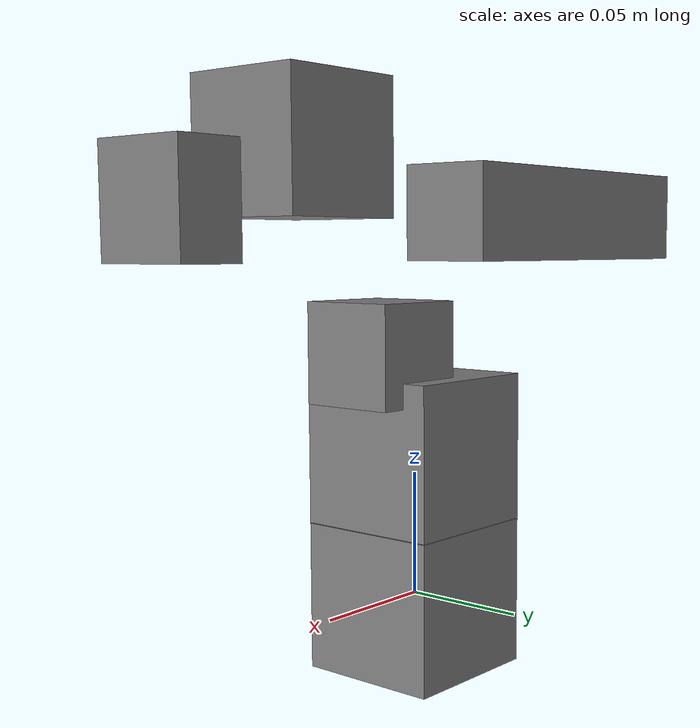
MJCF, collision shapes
<?xml version="1.0" ?>
<mujoco>
  <compiler angle="radian" autolimits="true"/>
  <visual>
    <global ellipsoidinertia="true"/>
  </visual>
  <default>
    <default class="arx5">
      <joint damping="0.1" frictionloss="0.001"/>
    </default>
  </default>
  <asset>
    <material name="groundplane" texture="groundplane" texuniform="true" texrepeat="5 5" reflectance="0.2"/>
    <texture type="2d" name="groundplane" builtin="checker" mark="edge" rgb1="0.2 0.3 0.4" rgb2="0.1 0.2 0.3" markrgb="0.8 0.8 0.8" width="300" height="300"/>
    <material name="arm" rgba="0.752941176470588 0.752941176470588 0.752941176470588 1" />

    <mesh name="base_link" file="meshes/base_link.STL"/>
    <mesh name="link1" file="meshes/link1.STL"/>
    <mesh name="link2" file="meshes/link2.STL"/>
    <mesh name="link3" file="meshes/link3.STL"/>
    <mesh name="link4" file="meshes/link4.STL"/>
    <mesh name="link5" file="meshes/link5.STL"/>
  </asset>
  <worldbody>
    <!--Start of base-->
    <body name="base" pos="0 0 0" gravcomp="1">
      <!--Start of hand base-->
      <body name="base_link" pos="0.0 0.0 0.0" quat="1 0 0 0" gravcomp="1">
        <inertial pos="-3.764e-5 0.00006519 0.03037877" quat="1.0 0.0 0.0 0.0" mass="0.428" diaginertia="0.00060728 0.00060832 1.917e-4"/>
        <site name="right_center" pos="0 0 0" size="0.01" rgba="1 0.3 0.3 1" group="2"/>
        <geom pos="0.0 0.0 0.0" quat="1.0 0.0 0.0 0.0" name="base_link_visual" group="1" contype="0" conaffinity="0" mesh="base_link" type="mesh"/>
        <geom pos="0.0 0.0 0.0" quat="1.0 0.0 0.0 0.0" name="base_link_collision" group="0" type="box" size="0.03 0.03 0.03"/>
        <!--Start of link1-->
        <body name="link1" pos="0.0 0.0 0.0603" quat="1.0 0.0 0.0 0.0" gravcomp="1">
          <joint name="joint1" type="hinge" class="arx5" axis="0 0 1" range="-3.14159 3.14159"/>
          <inertial pos="0.00571213 0.0002547 0.01750661" quat="1.0 0.0 0.0 0.0" mass="0.064" diaginertia="0.00008 0.00003 0.00007"/>
          <geom pos="0.0 0.0 0.0" quat="1.0 0.0 0.0 0.0" name="link1_visual" group="1" contype="0" material="arm" conaffinity="0" mesh="link1" type="mesh"/>
          <geom pos="0.0 0.0 0.0" quat="1.0 0.0 0.0 0.0" name="link1_collision" group="0" type="box" size="0.03 0.03 0.03"/>
          <!--Start of link2-->
          <body name="link2" pos="0.02 0.0 0.0402" quat="1.0 0.0 0.0 0.0" gravcomp="1">
            <joint name="joint2" type="hinge" class="arx5" axis="0 1 0" range="0 3.14"/>
            <inertial pos="-0.13225701 0.00072373 4.274e-5" quat="1.0 0.0 0.0 0.0" mass="1.165" diaginertia="0.00057063 0.03669927 0.03683489"/>
            <geom pos="0.0 0.0 0.0" material="arm" quat="1.0 0.0 0.0 0.0" name="link2_visual" group="1" contype="0" conaffinity="0" mesh="link2" type="mesh"/>
            <geom pos="0.0 0.0 0.0" quat="1.0 0.0 0.0 0.0" name="link2_collision" group="0" type="box" size="0.02 0.02 0.02"/>
            <!--Start of link3-->
            <body name="link3" pos="-0.264 0.0 0.0" quat="-3.673205103346574e-06 -0.9999999999932537 -0.0 0.0" gravcomp="1">
              <joint name="joint3" type="hinge" class="arx5" axis="0 1 0" range="0 3.14"/>
              <inertial pos="0.19096098 0.00069065 -0.05342172" quat="1.0 0.0 0.0 0.0" mass="0.546" diaginertia="0.00178249 0.02486615 0.02329476"/>
              <geom pos="0.0 0.0 0.0" quat="1.0 0.0 0.0 0.0" name="link3_visual" group="1" material="arm" contype="0" conaffinity="0" mesh="link3" type="mesh"/>
              <geom pos="0.15 0.0 -0.055" quat="0.7071067811865476 0.0 0.7071067811865475 0.0" name="link3_collision" group="0" type="box" size="0.02 0.02 0.075"/>
              <!--Start of link4-->
              <body name="link4" pos="0.245 0.0 -0.056" quat="1.0 0.0 0.0 0.0" gravcomp="1">
                <joint name="joint4" type="hinge" class="arx5" axis="0 1 0" range="-1.57079632679 1.57079632679"/>
                <inertial pos="0.03092317 0.0066107 -0.03138504" quat="1.0 0.0 0.0 0.0" mass="0.080971" diaginertia="0.00017832 0.00021182 0.00011328"/>
                <geom pos="0.0 0.0 0.0" quat="1.0 0.0 0.0 0.0" name="link4_visual" group="1" material="arm" contype="0" conaffinity="0" mesh="link4" type="mesh"/>
                <geom pos="0.06575 -0.001 -0.02" quat="1.0 0.0 0.0 0.0" name="link4_collision" group="0" type="box" size="0.025 0.025 0.025"/>
                <!--Start of link5-->
                <body name="link5" pos="0.06575 -0.001 -0.0825" quat="1.0 0.0 0.0 0.0" gravcomp="1">
                  <joint name="joint5" type="hinge" class="arx5" axis="0 0 1" range="-1.67 1.67"/>
                  <inertial pos="0.0040681 0.00000885 0.05120675" quat="1.0 0.0 0.0 0.0" mass="0.655" diaginertia="0.00254972 0.00255018 0.00026961"/>
                  <geom pos="0.0 0.0 0.0" quat="1.0 0.0 0.0 0.0" name="link5_visual" group="1" material="arm" contype="0" conaffinity="0" mesh="link5" type="mesh"/>
                  <geom pos="0.055 0.0 0.083" quat="0.7071067811865476 0.0 0.7071067811865475 0.0" name="link5_collision" group="0" type="box" size="0.02 0.02 0.0125"/>

                  <!--Start of link6-->
                  <body name="link6" pos="0.02845 0.0 0.0825" quat="-3.673205103346574e-06 -0.9999999999932537 -0.0 0.0" gravcomp="1">
                      <joint name="joint6" type="hinge" class="arx5" axis="1 0 0" range="-1.57 1.57"/>
                      <inertial pos="0.05435277 -0.00734005 0.01881196" quat="1.0 0.0 0.0 0.0" mass="0.902" diaginertia="0.00229822 0.00596005 0.00530799"/>
                      <body name="right_hand" pos="0.0 0.0 0.0" quat="1 0 0 0" gravcomp="1">
                          <camera mode="fixed" name="right_eye_in_hand" pos="0.064363 0.004000 0.077500" quat="0.656893 -0.260460 -0.259414 0.658298" fovy="42.47"/>
                      </body>
                  </body>
                  <!--End of link6-->
                </body>
                <!--End of link5-->
              </body>
              <!--End of link4-->
            </body>
            <!--End of link3-->
          </body>
          <!--End of link2-->
        </body>
        <!--End of link1-->
      </body>
      <!--End of hand base-->
    </body>
    <!--End of base-->
  </worldbody>
  <actuator>
    <motor name="actuator1" joint="joint1" ctrlrange="-50 50" ctrllimited="true"/>
    <motor name="actuator2" joint="joint2" ctrlrange="-50 50" ctrllimited="true"/>
    <motor name="actuator3" joint="joint3" ctrlrange="-50 50" ctrllimited="true"/>
    <motor name="actuator4" joint="joint4" ctrlrange="-50 50" ctrllimited="true"/>
    <motor name="actuator5" joint="joint5" ctrlrange="-50 50" ctrllimited="true"/>
    <motor name="actuator6" joint="joint6" ctrlrange="-50 50" ctrllimited="true"/>]
  </actuator>
</mujoco>
